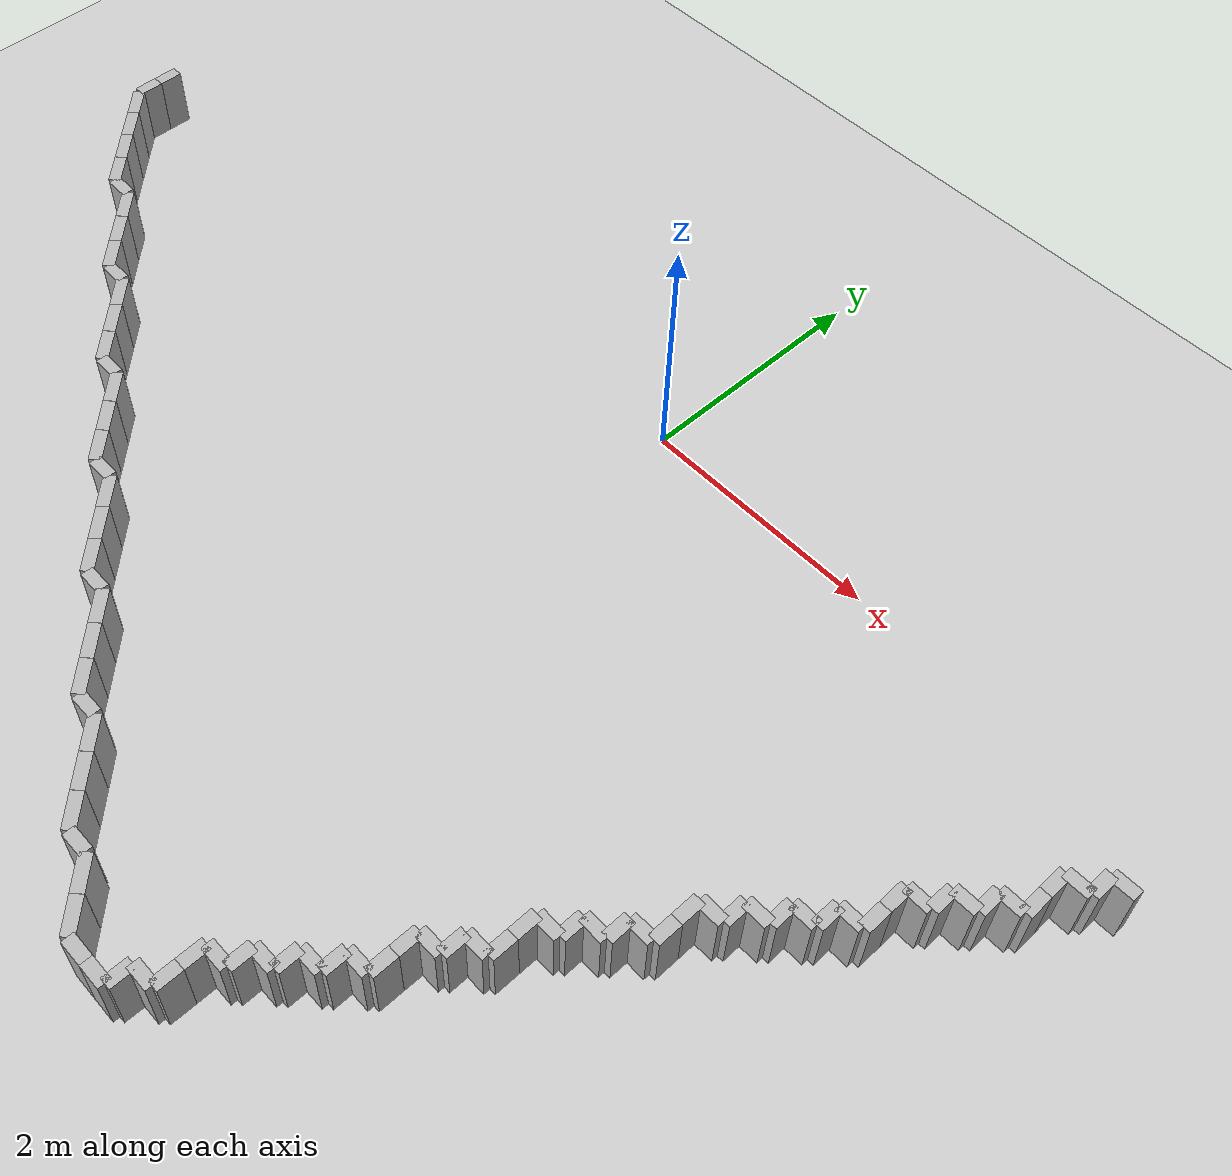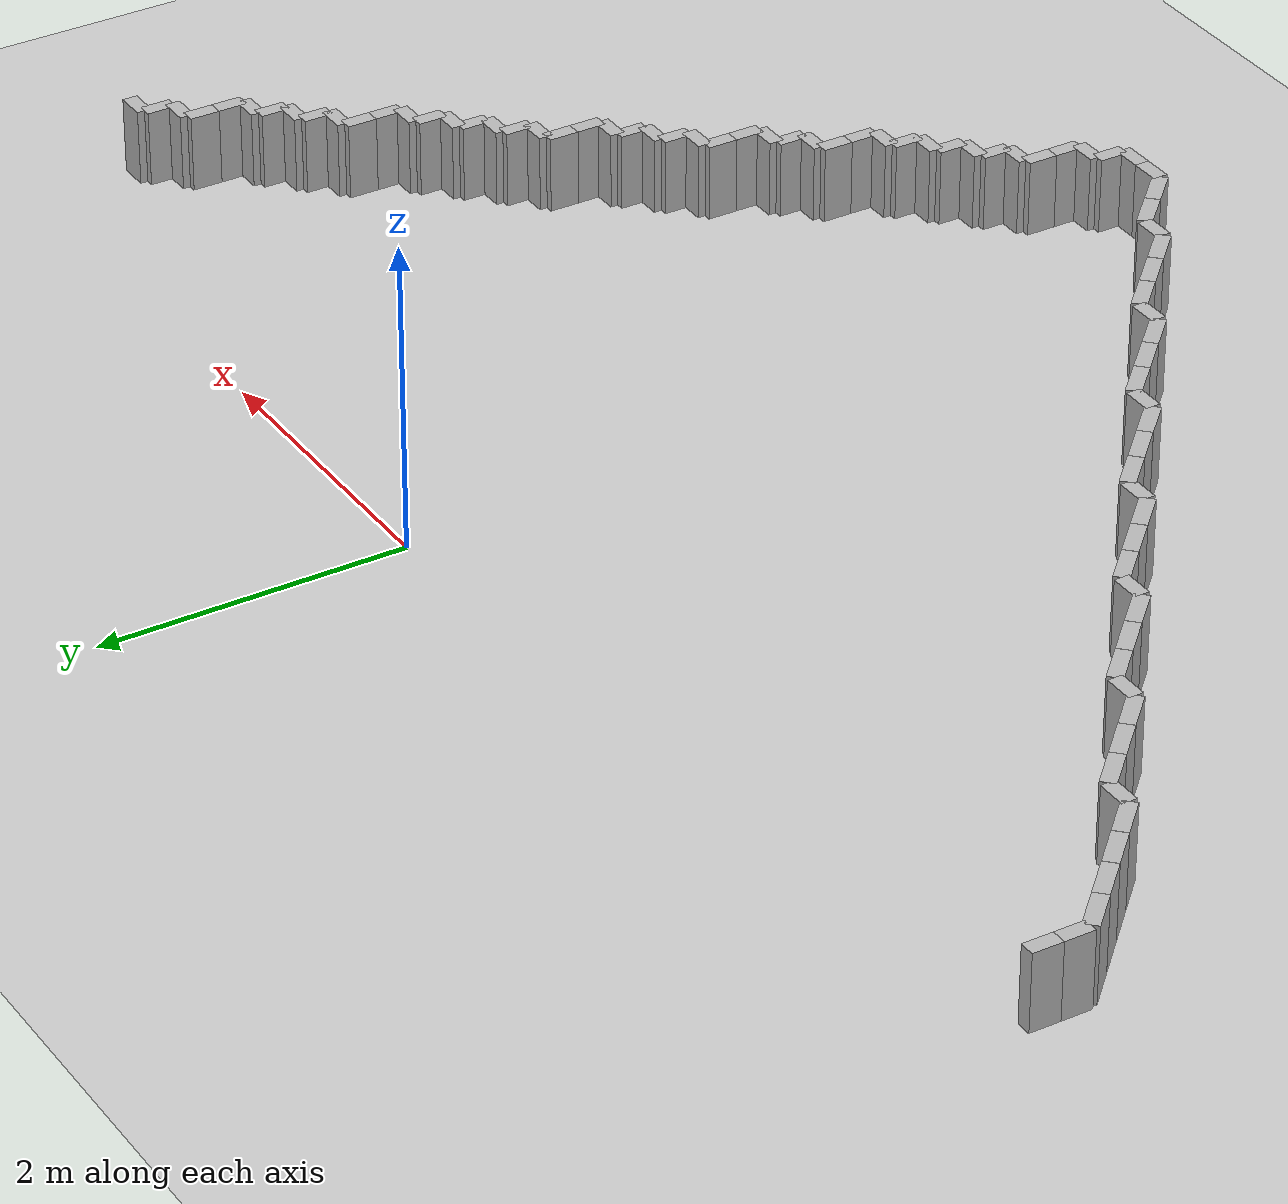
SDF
<sdf version="1.6">
 <world name="default">
  <include><uri>model://ground_plane</uri></include>
  <include><uri>model://sun</uri></include>
  <model name="wall_98">
   <static>true</static>
   <pose>-5.599803921568628 -0.6001960784313725 0 0 0 -1.5707963267948966</pose>
   <link name="link">
    <collision name="collision"><geometry><box><size>0.20000000000000007 0.1 1</size></box></geometry></collision>
    <visual name="visual"><geometry><box><size>0.20000000000000007 0.1 1</size></box></geometry></visual>
   </link>
  </model>
  <model name="wall_99">
   <static>true</static>
   <pose>-5.599803921568628 -0.8001960784313724 0 0 0 -1.5707963267948966</pose>
   <link name="link">
    <collision name="collision"><geometry><box><size>0.19999999999999996 0.1 1</size></box></geometry></collision>
    <visual name="visual"><geometry><box><size>0.19999999999999996 0.1 1</size></box></geometry></visual>
   </link>
  </model>
  <model name="wall_100">
   <static>true</static>
   <pose>-5.5 -1.0 0 0 0 -0.7853981633974481</pose>
   <link name="link">
    <collision name="collision"><geometry><box><size>0.2822881189207479 0.1 1</size></box></geometry></collision>
    <visual name="visual"><geometry><box><size>0.2822881189207479 0.1 1</size></box></geometry></visual>
   </link>
  </model>
  <model name="wall_101">
   <static>true</static>
   <pose>-5.4 -1.1 0 0 0 -0.7853981633974483</pose>
   <link name="link">
    <collision name="collision">
     <geometry><box><size>0.0005545935538712976 0.1 1</size></box></geometry>
    </collision>
    <visual name="visual"><geometry><box><size>0.0005545935538712976 0.1 1</size></box></geometry></visual>
   </link>
  </model>
  <model name="wall_102">
   <static>true</static>
   <pose>-5.300000000000001 -1.2000000000000002 0 0 0 -0.7853981633974477</pose>
   <link name="link">
    <collision name="collision"><geometry><box><size>0.28228811892074784 0.1 1</size></box></geometry></collision>
    <visual name="visual"><geometry><box><size>0.28228811892074784 0.1 1</size></box></geometry></visual>
   </link>
  </model>
  <model name="wall_103">
   <static>true</static>
   <pose>-5.2 -1.3 0 0 0 -0.7853981633974483</pose>
   <link name="link">
    <collision name="collision">
     <geometry><box><size>0.0005545935538712976 0.1 1</size></box></geometry>
    </collision>
    <visual name="visual"><geometry><box><size>0.0005545935538712976 0.1 1</size></box></geometry></visual>
   </link>
  </model>
  <model name="wall_104">
   <static>true</static>
   <pose>-5.1 -1.3999999999999997 0 0 0 -0.7853981633974461</pose>
   <link name="link">
    <collision name="collision"><geometry><box><size>0.28228811892074734 0.1 1</size></box></geometry></collision>
    <visual name="visual"><geometry><box><size>0.28228811892074734 0.1 1</size></box></geometry></visual>
   </link>
  </model>
  <model name="wall_105">
   <static>true</static>
   <pose>-5.0 -1.4999999999999996 0 0 0 -0.7853981633982976</pose>
   <link name="link">
    <collision name="collision">
     <geometry><box><size>0.0005545935538717686 0.1 1</size></box></geometry>
    </collision>
    <visual name="visual"><geometry><box><size>0.0005545935538717686 0.1 1</size></box></geometry></visual>
   </link>
  </model>
  <model name="wall_106">
   <static>true</static>
   <pose>-4.9 -1.5999999999999996 0 0 0 -0.7853981633974483</pose>
   <link name="link">
    <collision name="collision"><geometry><box><size>0.2822881189207467 0.1 1</size></box></geometry></collision>
    <visual name="visual"><geometry><box><size>0.2822881189207467 0.1 1</size></box></geometry></visual>
   </link>
  </model>
  <model name="wall_107">
   <static>true</static>
   <pose>-4.700196078431373 -1.699803921568627 0 0 0 0.0</pose>
   <link name="link">
    <collision name="collision"><geometry><box><size>0.20000000000000018 0.1 1</size></box></geometry></collision>
    <visual name="visual"><geometry><box><size>0.20000000000000018 0.1 1</size></box></geometry></visual>
   </link>
  </model>
  <model name="wall_108">
   <static>true</static>
   <pose>-4.6 -1.6999999999999997 0 0 0 -0.7853981633974483</pose>
   <link name="link">
    <collision name="collision">
     <geometry><box><size>0.0005545935538725537 0.1 1</size></box></geometry>
    </collision>
    <visual name="visual"><geometry><box><size>0.0005545935538725537 0.1 1</size></box></geometry></visual>
   </link>
  </model>
  <model name="wall_109">
   <static>true</static>
   <pose>-4.5 -1.7999999999999998 0 0 0 -0.7853981633974483</pose>
   <link name="link">
    <collision name="collision"><geometry><box><size>0.2822881189207467 0.1 1</size></box></geometry></collision>
    <visual name="visual"><geometry><box><size>0.2822881189207467 0.1 1</size></box></geometry></visual>
   </link>
  </model>
  <model name="wall_110">
   <static>true</static>
   <pose>-4.4 -1.9 0 0 0 -0.7853981633971652</pose>
   <link name="link">
    <collision name="collision">
     <geometry><box><size>0.0005545935538723967 0.1 1</size></box></geometry>
    </collision>
    <visual name="visual"><geometry><box><size>0.0005545935538723967 0.1 1</size></box></geometry></visual>
   </link>
  </model>
  <model name="wall_111">
   <static>true</static>
   <pose>-4.3 -1.9999999999999996 0 0 0 -0.7853981633974477</pose>
   <link name="link">
    <collision name="collision"><geometry><box><size>0.28228811892074657 0.1 1</size></box></geometry></collision>
    <visual name="visual"><geometry><box><size>0.28228811892074657 0.1 1</size></box></geometry></visual>
   </link>
  </model>
  <model name="wall_112">
   <static>true</static>
   <pose>-4.199999999999999 -2.0999999999999996 0 0 0 -0.7853981633974483</pose>
   <link name="link">
    <collision name="collision">
     <geometry><box><size>0.0005545935538725537 0.1 1</size></box></geometry>
    </collision>
    <visual name="visual"><geometry><box><size>0.0005545935538725537 0.1 1</size></box></geometry></visual>
   </link>
  </model>
  <model name="wall_113">
   <static>true</static>
   <pose>-4.1 -2.1999999999999997 0 0 0 -0.7853981633974483</pose>
   <link name="link">
    <collision name="collision"><geometry><box><size>0.2822881189207467 0.1 1</size></box></geometry></collision>
    <visual name="visual"><geometry><box><size>0.2822881189207467 0.1 1</size></box></geometry></visual>
   </link>
  </model>
  <model name="wall_114">
   <static>true</static>
   <pose>-3.9001960784313727 -2.299803921568627 0 0 0 0.0</pose>
   <link name="link">
    <collision name="collision"><geometry><box><size>0.19999999999999973 0.1 1</size></box></geometry></collision>
    <visual name="visual"><geometry><box><size>0.19999999999999973 0.1 1</size></box></geometry></visual>
   </link>
  </model>
  <model name="wall_115">
   <static>true</static>
   <pose>-3.8 -2.3 0 0 0 -0.7853981633974483</pose>
   <link name="link">
    <collision name="collision">
     <geometry><box><size>0.0005545935538725537 0.1 1</size></box></geometry>
    </collision>
    <visual name="visual"><geometry><box><size>0.0005545935538725537 0.1 1</size></box></geometry></visual>
   </link>
  </model>
  <model name="wall_116">
   <static>true</static>
   <pose>-3.6999999999999997 -2.4 0 0 0 -0.7853981633974483</pose>
   <link name="link">
    <collision name="collision"><geometry><box><size>0.2822881189207467 0.1 1</size></box></geometry></collision>
    <visual name="visual"><geometry><box><size>0.2822881189207467 0.1 1</size></box></geometry></visual>
   </link>
  </model>
  <model name="wall_117">
   <static>true</static>
   <pose>-3.5999999999999996 -2.5 0 0 0 -0.7853981633974483</pose>
   <link name="link">
    <collision name="collision">
     <geometry><box><size>0.0005545935538719256 0.1 1</size></box></geometry>
    </collision>
    <visual name="visual"><geometry><box><size>0.0005545935538719256 0.1 1</size></box></geometry></visual>
   </link>
  </model>
  <model name="wall_118">
   <static>true</static>
   <pose>-3.5 -2.5999999999999996 0 0 0 -0.7853981633974483</pose>
   <link name="link">
    <collision name="collision"><geometry><box><size>0.2822881189207467 0.1 1</size></box></geometry></collision>
    <visual name="visual"><geometry><box><size>0.2822881189207467 0.1 1</size></box></geometry></visual>
   </link>
  </model>
  <model name="wall_119">
   <static>true</static>
   <pose>-3.4 -2.6999999999999997 0 0 0 -0.7853981633974483</pose>
   <link name="link">
    <collision name="collision">
     <geometry><box><size>0.0005545935538725537 0.1 1</size></box></geometry>
    </collision>
    <visual name="visual"><geometry><box><size>0.0005545935538725537 0.1 1</size></box></geometry></visual>
   </link>
  </model>
  <model name="wall_120">
   <static>true</static>
   <pose>-3.3 -2.8 0 0 0 -0.7853981633974483</pose>
   <link name="link">
    <collision name="collision"><geometry><box><size>0.2822881189207467 0.1 1</size></box></geometry></collision>
    <visual name="visual"><geometry><box><size>0.2822881189207467 0.1 1</size></box></geometry></visual>
   </link>
  </model>
  <model name="wall_121">
   <static>true</static>
   <pose>-3.1001960784313725 -2.899803921568627 0 0 0 0.0</pose>
   <link name="link">
    <collision name="collision"><geometry><box><size>0.20000000000000018 0.1 1</size></box></geometry></collision>
    <visual name="visual"><geometry><box><size>0.20000000000000018 0.1 1</size></box></geometry></visual>
   </link>
  </model>
  <model name="wall_122">
   <static>true</static>
   <pose>-3.0 -2.9 0 0 0 -0.7853981633980145</pose>
   <link name="link">
    <collision name="collision">
     <geometry><box><size>0.0005545935538722397 0.1 1</size></box></geometry>
    </collision>
    <visual name="visual"><geometry><box><size>0.0005545935538722397 0.1 1</size></box></geometry></visual>
   </link>
  </model>
  <model name="wall_123">
   <static>true</static>
   <pose>-2.9 -3.0 0 0 0 -0.7853981633974483</pose>
   <link name="link">
    <collision name="collision"><geometry><box><size>0.2822881189207467 0.1 1</size></box></geometry></collision>
    <visual name="visual"><geometry><box><size>0.2822881189207467 0.1 1</size></box></geometry></visual>
   </link>
  </model>
  <model name="wall_124">
   <static>true</static>
   <pose>-2.8 -3.0999999999999996 0 0 0 -0.7853981633968821</pose>
   <link name="link">
    <collision name="collision">
     <geometry><box><size>0.0005545935538722397 0.1 1</size></box></geometry>
    </collision>
    <visual name="visual"><geometry><box><size>0.0005545935538722397 0.1 1</size></box></geometry></visual>
   </link>
  </model>
  <model name="wall_125">
   <static>true</static>
   <pose>-2.6999999999999997 -3.1999999999999997 0 0 0 -0.7853981633974483</pose>
   <link name="link">
    <collision name="collision"><geometry><box><size>0.2822881189207467 0.1 1</size></box></geometry></collision>
    <visual name="visual"><geometry><box><size>0.2822881189207467 0.1 1</size></box></geometry></visual>
   </link>
  </model>
  <model name="wall_126">
   <static>true</static>
   <pose>-2.5999999999999996 -3.3 0 0 0 -0.7853981633980145</pose>
   <link name="link">
    <collision name="collision">
     <geometry><box><size>0.0005545935538722397 0.1 1</size></box></geometry>
    </collision>
    <visual name="visual"><geometry><box><size>0.0005545935538722397 0.1 1</size></box></geometry></visual>
   </link>
  </model>
  <model name="wall_127">
   <static>true</static>
   <pose>-2.5 -3.4 0 0 0 -0.7853981633974483</pose>
   <link name="link">
    <collision name="collision"><geometry><box><size>0.2822881189207467 0.1 1</size></box></geometry></collision>
    <visual name="visual"><geometry><box><size>0.2822881189207467 0.1 1</size></box></geometry></visual>
   </link>
  </model>
  <model name="wall_128">
   <static>true</static>
   <pose>-2.3001960784313726 -3.499803921568627 0 0 0 0.0</pose>
   <link name="link">
    <collision name="collision"><geometry><box><size>0.20000000000000018 0.1 1</size></box></geometry></collision>
    <visual name="visual"><geometry><box><size>0.20000000000000018 0.1 1</size></box></geometry></visual>
   </link>
  </model>
  <model name="wall_129">
   <static>true</static>
   <pose>-2.1999999999999997 -3.5 0 0 0 -0.7853981633968821</pose>
   <link name="link">
    <collision name="collision">
     <geometry><box><size>0.0005545935538722397 0.1 1</size></box></geometry>
    </collision>
    <visual name="visual"><geometry><box><size>0.0005545935538722397 0.1 1</size></box></geometry></visual>
   </link>
  </model>
  <model name="wall_130">
   <static>true</static>
   <pose>-2.0999999999999996 -3.5999999999999996 0 0 0 -0.7853981633974483</pose>
   <link name="link">
    <collision name="collision"><geometry><box><size>0.2822881189207467 0.1 1</size></box></geometry></collision>
    <visual name="visual"><geometry><box><size>0.2822881189207467 0.1 1</size></box></geometry></visual>
   </link>
  </model>
  <model name="wall_131">
   <static>true</static>
   <pose>-1.9999999999999996 -3.6999999999999997 0 0 0 -0.7853981633977314</pose>
   <link name="link">
    <collision name="collision">
     <geometry><box><size>0.0005545935538723967 0.1 1</size></box></geometry>
    </collision>
    <visual name="visual"><geometry><box><size>0.0005545935538723967 0.1 1</size></box></geometry></visual>
   </link>
  </model>
  <model name="wall_132">
   <static>true</static>
   <pose>-1.8999999999999997 -3.8 0 0 0 -0.7853981633974483</pose>
   <link name="link">
    <collision name="collision"><geometry><box><size>0.2822881189207467 0.1 1</size></box></geometry></collision>
    <visual name="visual"><geometry><box><size>0.2822881189207467 0.1 1</size></box></geometry></visual>
   </link>
  </model>
  <model name="wall_133">
   <static>true</static>
   <pose>-1.7999999999999998 -3.9 0 0 0 -0.7853981633977314</pose>
   <link name="link">
    <collision name="collision">
     <geometry><box><size>0.0005545935538723967 0.1 1</size></box></geometry>
    </collision>
    <visual name="visual"><geometry><box><size>0.0005545935538723967 0.1 1</size></box></geometry></visual>
   </link>
  </model>
  <model name="wall_134">
   <static>true</static>
   <pose>-1.6999999999999997 -4.0 0 0 0 -0.7853981633974483</pose>
   <link name="link">
    <collision name="collision"><geometry><box><size>0.2822881189207467 0.1 1</size></box></geometry></collision>
    <visual name="visual"><geometry><box><size>0.2822881189207467 0.1 1</size></box></geometry></visual>
   </link>
  </model>
  <model name="wall_135">
   <static>true</static>
   <pose>-1.5001960784313724 -4.099803921568627 0 0 0 0.0</pose>
   <link name="link">
    <collision name="collision"><geometry><box><size>0.19999999999999996 0.1 1</size></box></geometry></collision>
    <visual name="visual"><geometry><box><size>0.19999999999999996 0.1 1</size></box></geometry></visual>
   </link>
  </model>
  <model name="wall_136">
   <static>true</static>
   <pose>-1.4000000000000001 -4.1 0 0 0 -0.7853981633985807</pose>
   <link name="link">
    <collision name="collision">
     <geometry><box><size>0.0005545935538719256 0.1 1</size></box></geometry>
    </collision>
    <visual name="visual"><geometry><box><size>0.0005545935538719256 0.1 1</size></box></geometry></visual>
   </link>
  </model>
  <model name="wall_137">
   <static>true</static>
   <pose>-1.3000000000000003 -4.2 0 0 0 -0.7853981633974466</pose>
   <link name="link">
    <collision name="collision"><geometry><box><size>0.2822881189207472 0.1 1</size></box></geometry></collision>
    <visual name="visual"><geometry><box><size>0.2822881189207472 0.1 1</size></box></geometry></visual>
   </link>
  </model>
  <model name="wall_138">
   <static>true</static>
   <pose>-1.2000000000000002 -4.3 0 0 0 -0.7853981633971652</pose>
   <link name="link">
    <collision name="collision">
     <geometry><box><size>0.0005545935538714546 0.1 1</size></box></geometry>
    </collision>
    <visual name="visual"><geometry><box><size>0.0005545935538714546 0.1 1</size></box></geometry></visual>
   </link>
  </model>
  <model name="wall_139">
   <static>true</static>
   <pose>-1.1 -4.3999999999999995 0 0 0 -0.7853981633974466</pose>
   <link name="link">
    <collision name="collision"><geometry><box><size>0.2822881189207472 0.1 1</size></box></geometry></collision>
    <visual name="visual"><geometry><box><size>0.2822881189207472 0.1 1</size></box></geometry></visual>
   </link>
  </model>
  <model name="wall_140">
   <static>true</static>
   <pose>-1.0 -4.5 0 0 0 -0.7853981633985807</pose>
   <link name="link">
    <collision name="collision">
     <geometry><box><size>0.0005545935538719256 0.1 1</size></box></geometry>
    </collision>
    <visual name="visual"><geometry><box><size>0.0005545935538719256 0.1 1</size></box></geometry></visual>
   </link>
  </model>
  <model name="wall_141">
   <static>true</static>
   <pose>-0.9 -4.6 0 0 0 -0.7853981633974488</pose>
   <link name="link">
    <collision name="collision"><geometry><box><size>0.28228811892074784 0.1 1</size></box></geometry></collision>
    <visual name="visual"><geometry><box><size>0.28228811892074784 0.1 1</size></box></geometry></visual>
   </link>
  </model>
  <model name="wall_142">
   <static>true</static>
   <pose>-0.7001960784313724 -4.699803921568628 0 0 0 0.0</pose>
   <link name="link">
    <collision name="collision"><geometry><box><size>0.19999999999999996 0.1 1</size></box></geometry></collision>
    <visual name="visual"><geometry><box><size>0.19999999999999996 0.1 1</size></box></geometry></visual>
   </link>
  </model>
  <model name="wall_143">
   <static>true</static>
   <pose>-0.6000000000000001 -4.7 0 0 0 -0.7853981633973067</pose>
   <link name="link">
    <collision name="collision">
     <geometry><box><size>0.0005545935538713761 0.1 1</size></box></geometry>
    </collision>
    <visual name="visual"><geometry><box><size>0.0005545935538713761 0.1 1</size></box></geometry></visual>
   </link>
  </model>
  <model name="wall_144">
   <static>true</static>
   <pose>-0.5 -4.800000000000001 0 0 0 -0.7853981633974488</pose>
   <link name="link">
    <collision name="collision"><geometry><box><size>0.28228811892074784 0.1 1</size></box></geometry></collision>
    <visual name="visual"><geometry><box><size>0.28228811892074784 0.1 1</size></box></geometry></visual>
   </link>
  </model>
  <model name="wall_145">
   <static>true</static>
   <pose>-0.4 -4.9 0 0 0 -0.7853981633974483</pose>
   <link name="link">
    <collision name="collision">
     <geometry><box><size>0.0005545935538712976 0.1 1</size></box></geometry>
    </collision>
    <visual name="visual"><geometry><box><size>0.0005545935538712976 0.1 1</size></box></geometry></visual>
   </link>
  </model>
  <model name="wall_146">
   <static>true</static>
   <pose>-0.30000000000000004 -5.0 0 0 0 -0.7853981633974487</pose>
   <link name="link">
    <collision name="collision"><geometry><box><size>0.28228811892074784 0.1 1</size></box></geometry></collision>
    <visual name="visual"><geometry><box><size>0.28228811892074784 0.1 1</size></box></geometry></visual>
   </link>
  </model>
  <model name="wall_147">
   <static>true</static>
   <pose>-0.2 -5.1000000000000005 0 0 0 -0.7853981633974483</pose>
   <link name="link">
    <collision name="collision">
     <geometry><box><size>0.0005545935538712976 0.1 1</size></box></geometry>
    </collision>
    <visual name="visual"><geometry><box><size>0.0005545935538712976 0.1 1</size></box></geometry></visual>
   </link>
  </model>
  <model name="wall_148">
   <static>true</static>
   <pose>-0.1 -5.200000000000001 0 0 0 -0.7853981633974487</pose>
   <link name="link">
    <collision name="collision"><geometry><box><size>0.28228811892074784 0.1 1</size></box></geometry></collision>
    <visual name="visual"><geometry><box><size>0.28228811892074784 0.1 1</size></box></geometry></visual>
   </link>
  </model>
  <model name="wall_149">
   <static>true</static>
   <pose>0.09980392156862763 -5.299803921568628 0 0 0 0.0</pose>
   <link name="link">
    <collision name="collision"><geometry><box><size>0.2 0.1 1</size></box></geometry></collision>
    <visual name="visual"><geometry><box><size>0.2 0.1 1</size></box></geometry></visual>
   </link>
  </model>
  <model name="wall_150">
   <static>true</static>
   <pose>0.2 -5.300000000000001 0 0 0 -0.7853981633974483</pose>
   <link name="link">
    <collision name="collision">
     <geometry><box><size>0.0005545935538712976 0.1 1</size></box></geometry>
    </collision>
    <visual name="visual"><geometry><box><size>0.0005545935538712976 0.1 1</size></box></geometry></visual>
   </link>
  </model>
  <model name="wall_151">
   <static>true</static>
   <pose>0.30000000000000004 -5.4 0 0 0 -0.7853981633974465</pose>
   <link name="link">
    <collision name="collision"><geometry><box><size>0.28228811892074723 0.1 1</size></box></geometry></collision>
    <visual name="visual"><geometry><box><size>0.28228811892074723 0.1 1</size></box></geometry></visual>
   </link>
  </model>
  <model name="wall_152">
   <static>true</static>
   <pose>0.4 -5.5 0 0 0 -0.7853981633974483</pose>
   <link name="link">
    <collision name="collision">
     <geometry><box><size>0.0005545935538712976 0.1 1</size></box></geometry>
    </collision>
    <visual name="visual"><geometry><box><size>0.0005545935538712976 0.1 1</size></box></geometry></visual>
   </link>
  </model>
  <model name="wall_153">
   <static>true</static>
   <pose>0.5 -5.6 0 0 0 -0.7853981633974488</pose>
   <link name="link">
    <collision name="collision"><geometry><box><size>0.28228811892074784 0.1 1</size></box></geometry></collision>
    <visual name="visual"><geometry><box><size>0.28228811892074784 0.1 1</size></box></geometry></visual>
   </link>
  </model>
  <model name="wall_154">
   <static>true</static>
   <pose>0.6998039215686276 -5.699803921568628 0 0 0 0.0</pose>
   <link name="link">
    <collision name="collision"><geometry><box><size>0.20000000000000007 0.1 1</size></box></geometry></collision>
    <visual name="visual"><geometry><box><size>0.20000000000000007 0.1 1</size></box></geometry></visual>
   </link>
  </model>
  <model name="wall_155">
   <static>true</static>
   <pose>0.8998039215686277 -5.699803921568628 0 0 0 0.0</pose>
   <link name="link">
    <collision name="collision"><geometry><box><size>0.19999999999999996 0.1 1</size></box></geometry></collision>
    <visual name="visual"><geometry><box><size>0.19999999999999996 0.1 1</size></box></geometry></visual>
   </link>
  </model>
  <model name="wall_156">
   <static>true</static>
   <pose>0.9998039215686276 -5.6 0 0 0 1.5707963267948966</pose>
   <link name="link">
    <collision name="collision"><geometry><box><size>0.19960784313725544 0.1 1</size></box></geometry></collision>
    <visual name="visual"><geometry><box><size>0.19960784313725544 0.1 1</size></box></geometry></visual>
   </link>
  </model>
  <model name="wall_157">
   <static>true</static>
   <pose>1.0998039215686277 -5.5 0 0 0 0.001960781800869945</pose>
   <link name="link">
    <collision name="collision"><geometry><box><size>0.2000003844671429 0.1 1</size></box></geometry></collision>
    <visual name="visual"><geometry><box><size>0.2000003844671429 0.1 1</size></box></geometry></visual>
   </link>
  </model>
  <model name="wall_158">
   <static>true</static>
   <pose>1.1998039215686276 -5.4 0 0 0 1.5707963267948966</pose>
   <link name="link">
    <collision name="collision"><geometry><box><size>0.19960784313725455 0.1 1</size></box></geometry></collision>
    <visual name="visual"><geometry><box><size>0.19960784313725455 0.1 1</size></box></geometry></visual>
   </link>
  </model>
  <model name="wall_159">
   <static>true</static>
   <pose>1.1998039215686276 -5.200196078431373 0 0 0 1.5707963267948966</pose>
   <link name="link">
    <collision name="collision"><geometry><box><size>0.20000000000000018 0.1 1</size></box></geometry></collision>
    <visual name="visual"><geometry><box><size>0.20000000000000018 0.1 1</size></box></geometry></visual>
   </link>
  </model>
  <model name="wall_160">
   <static>true</static>
   <pose>1.2998039215686277 -5.1000000000000005 0 0 0 0.001960781800869943</pose>
   <link name="link">
    <collision name="collision"><geometry><box><size>0.20000038446714313 0.1 1</size></box></geometry></collision>
    <visual name="visual"><geometry><box><size>0.20000038446714313 0.1 1</size></box></geometry></visual>
   </link>
  </model>
  <model name="wall_161">
   <static>true</static>
   <pose>1.3998039215686278 -5.0 0 0 0 1.5707963267948966</pose>
   <link name="link">
    <collision name="collision"><geometry><box><size>0.19960784313725544 0.1 1</size></box></geometry></collision>
    <visual name="visual"><geometry><box><size>0.19960784313725544 0.1 1</size></box></geometry></visual>
   </link>
  </model>
  <model name="wall_162">
   <static>true</static>
   <pose>1.4998039215686276 -4.9 0 0 0 0.001960781800869945</pose>
   <link name="link">
    <collision name="collision"><geometry><box><size>0.2000003844671429 0.1 1</size></box></geometry></collision>
    <visual name="visual"><geometry><box><size>0.2000003844671429 0.1 1</size></box></geometry></visual>
   </link>
  </model>
  <model name="wall_163">
   <static>true</static>
   <pose>1.5998039215686277 -4.800000000000001 0 0 0 1.5707963267948966</pose>
   <link name="link">
    <collision name="collision"><geometry><box><size>0.19960784313725544 0.1 1</size></box></geometry></collision>
    <visual name="visual"><geometry><box><size>0.19960784313725544 0.1 1</size></box></geometry></visual>
   </link>
  </model>
  <model name="wall_164">
   <static>true</static>
   <pose>1.6998039215686278 -4.7 0 0 0 0.001960781800869945</pose>
   <link name="link">
    <collision name="collision"><geometry><box><size>0.2000003844671429 0.1 1</size></box></geometry></collision>
    <visual name="visual"><geometry><box><size>0.2000003844671429 0.1 1</size></box></geometry></visual>
   </link>
  </model>
  <model name="wall_165">
   <static>true</static>
   <pose>1.7998039215686277 -4.6 0 0 0 1.5707963267948966</pose>
   <link name="link">
    <collision name="collision"><geometry><box><size>0.19960784313725544 0.1 1</size></box></geometry></collision>
    <visual name="visual"><geometry><box><size>0.19960784313725544 0.1 1</size></box></geometry></visual>
   </link>
  </model>
  <model name="wall_166">
   <static>true</static>
   <pose>1.8998039215686275 -4.5 0 0 0 0.001960781800874386</pose>
   <link name="link">
    <collision name="collision"><geometry><box><size>0.2000003844671429 0.1 1</size></box></geometry></collision>
    <visual name="visual"><geometry><box><size>0.2000003844671429 0.1 1</size></box></geometry></visual>
   </link>
  </model>
  <model name="wall_167">
   <static>true</static>
   <pose>1.9998039215686276 -4.3999999999999995 0 0 0 1.5707963267948966</pose>
   <link name="link">
    <collision name="collision"><geometry><box><size>0.19960784313725455 0.1 1</size></box></geometry></collision>
    <visual name="visual"><geometry><box><size>0.19960784313725455 0.1 1</size></box></geometry></visual>
   </link>
  </model>
  <model name="wall_168">
   <static>true</static>
   <pose>1.9998039215686276 -4.2001960784313725 0 0 0 1.5707963267948966</pose>
   <link name="link">
    <collision name="collision"><geometry><box><size>0.1999999999999993 0.1 1</size></box></geometry></collision>
    <visual name="visual"><geometry><box><size>0.1999999999999993 0.1 1</size></box></geometry></visual>
   </link>
  </model>
  <model name="wall_169">
   <static>true</static>
   <pose>2.0998039215686277 -4.1 0 0 0 0.0019607818008743837</pose>
   <link name="link">
    <collision name="collision"><geometry><box><size>0.20000038446714313 0.1 1</size></box></geometry></collision>
    <visual name="visual"><geometry><box><size>0.20000038446714313 0.1 1</size></box></geometry></visual>
   </link>
  </model>
  <model name="wall_170">
   <static>true</static>
   <pose>2.199803921568628 -4.0 0 0 0 1.5707963267948966</pose>
   <link name="link">
    <collision name="collision"><geometry><box><size>0.19960784313725455 0.1 1</size></box></geometry></collision>
    <visual name="visual"><geometry><box><size>0.19960784313725455 0.1 1</size></box></geometry></visual>
   </link>
  </model>
  <model name="wall_171">
   <static>true</static>
   <pose>2.2998039215686275 -3.9 0 0 0 0.001960781800874388</pose>
   <link name="link">
    <collision name="collision"><geometry><box><size>0.2000003844671427 0.1 1</size></box></geometry></collision>
    <visual name="visual"><geometry><box><size>0.2000003844671427 0.1 1</size></box></geometry></visual>
   </link>
  </model>
  <model name="wall_172">
   <static>true</static>
   <pose>2.3998039215686275 -3.8 0 0 0 1.5707963267948966</pose>
   <link name="link">
    <collision name="collision"><geometry><box><size>0.19960784313725455 0.1 1</size></box></geometry></collision>
    <visual name="visual"><geometry><box><size>0.19960784313725455 0.1 1</size></box></geometry></visual>
   </link>
  </model>
  <model name="wall_173">
   <static>true</static>
   <pose>2.3998039215686275 -3.6001960784313725 0 0 0 1.5707963267948966</pose>
   <link name="link">
    <collision name="collision"><geometry><box><size>0.20000000000000018 0.1 1</size></box></geometry></collision>
    <visual name="visual"><geometry><box><size>0.20000000000000018 0.1 1</size></box></geometry></visual>
   </link>
  </model>
  <model name="wall_174">
   <static>true</static>
   <pose>2.4998039215686276 -3.5 0 0 0 0.0019607818008721633</pose>
   <link name="link">
    <collision name="collision"><geometry><box><size>0.20000038446714313 0.1 1</size></box></geometry></collision>
    <visual name="visual"><geometry><box><size>0.20000038446714313 0.1 1</size></box></geometry></visual>
   </link>
  </model>
  <model name="wall_175">
   <static>true</static>
   <pose>2.5998039215686277 -3.4 0 0 0 1.5707963267948966</pose>
   <link name="link">
    <collision name="collision"><geometry><box><size>0.19960784313725455 0.1 1</size></box></geometry></collision>
    <visual name="visual"><geometry><box><size>0.19960784313725455 0.1 1</size></box></geometry></visual>
   </link>
  </model>
  <model name="wall_176">
   <static>true</static>
   <pose>2.699803921568628 -3.3 0 0 0 0.0019607818008743837</pose>
   <link name="link">
    <collision name="collision"><geometry><box><size>0.20000038446714313 0.1 1</size></box></geometry></collision>
    <visual name="visual"><geometry><box><size>0.20000038446714313 0.1 1</size></box></geometry></visual>
   </link>
  </model>
  <model name="wall_177">
   <static>true</static>
   <pose>2.799803921568628 -3.1999999999999997 0 0 0 1.5707963267948966</pose>
   <link name="link">
    <collision name="collision"><geometry><box><size>0.19960784313725455 0.1 1</size></box></geometry></collision>
    <visual name="visual"><geometry><box><size>0.19960784313725455 0.1 1</size></box></geometry></visual>
   </link>
  </model>
  <model name="wall_178">
   <static>true</static>
   <pose>2.899803921568628 -3.0999999999999996 0 0 0 0.0019607818008721676</pose>
   <link name="link">
    <collision name="collision"><geometry><box><size>0.2000003844671427 0.1 1</size></box></geometry></collision>
    <visual name="visual"><geometry><box><size>0.2000003844671427 0.1 1</size></box></geometry></visual>
   </link>
  </model>
  <model name="wall_179">
   <static>true</static>
   <pose>2.9998039215686276 -3.0 0 0 0 1.5707963267948966</pose>
   <link name="link">
    <collision name="collision"><geometry><box><size>0.19960784313725455 0.1 1</size></box></geometry></collision>
    <visual name="visual"><geometry><box><size>0.19960784313725455 0.1 1</size></box></geometry></visual>
   </link>
  </model>
  <model name="wall_180">
   <static>true</static>
   <pose>2.9998039215686276 -2.8001960784313726 0 0 0 1.5707963267948966</pose>
   <link name="link">
    <collision name="collision"><geometry><box><size>0.20000000000000018 0.1 1</size></box></geometry></collision>
    <visual name="visual"><geometry><box><size>0.20000000000000018 0.1 1</size></box></geometry></visual>
   </link>
  </model>
  <model name="wall_181">
   <static>true</static>
   <pose>3.0998039215686277 -2.6999999999999997 0 0 0 0.0019607818008743837</pose>
   <link name="link">
    <collision name="collision"><geometry><box><size>0.20000038446714313 0.1 1</size></box></geometry></collision>
    <visual name="visual"><geometry><box><size>0.20000038446714313 0.1 1</size></box></geometry></visual>
   </link>
  </model>
  <model name="wall_182">
   <static>true</static>
   <pose>3.199803921568628 -2.5999999999999996 0 0 0 1.5707963267948966</pose>
   <link name="link">
    <collision name="collision"><geometry><box><size>0.19960784313725455 0.1 1</size></box></geometry></collision>
    <visual name="visual"><geometry><box><size>0.19960784313725455 0.1 1</size></box></geometry></visual>
   </link>
  </model>
  <model name="wall_183">
   <static>true</static>
   <pose>3.299803921568628 -2.5 0 0 0 0.0019607818008721633</pose>
   <link name="link">
    <collision name="collision"><geometry><box><size>0.20000038446714313 0.1 1</size></box></geometry></collision>
    <visual name="visual"><geometry><box><size>0.20000038446714313 0.1 1</size></box></geometry></visual>
   </link>
  </model>
  <model name="wall_184">
   <static>true</static>
   <pose>3.399803921568628 -2.4 0 0 0 1.5707963267948966</pose>
   <link name="link">
    <collision name="collision"><geometry><box><size>0.19960784313725455 0.1 1</size></box></geometry></collision>
    <visual name="visual"><geometry><box><size>0.19960784313725455 0.1 1</size></box></geometry></visual>
   </link>
  </model>
  <model name="wall_185">
   <static>true</static>
   <pose>3.4998039215686276 -2.3 0 0 0 0.001960781800874388</pose>
   <link name="link">
    <collision name="collision"><geometry><box><size>0.2000003844671427 0.1 1</size></box></geometry></collision>
    <visual name="visual"><geometry><box><size>0.2000003844671427 0.1 1</size></box></geometry></visual>
   </link>
  </model>
  <model name="wall_186">
   <static>true</static>
   <pose>3.5998039215686277 -2.1999999999999997 0 0 0 1.5707963267948966</pose>
   <link name="link">
    <collision name="collision"><geometry><box><size>0.19960784313725455 0.1 1</size></box></geometry></collision>
    <visual name="visual"><geometry><box><size>0.19960784313725455 0.1 1</size></box></geometry></visual>
   </link>
  </model>
  <model name="wall_187">
   <static>true</static>
   <pose>3.699803921568628 -2.0999999999999996 0 0 0 0.0019607818008743837</pose>
   <link name="link">
    <collision name="collision"><geometry><box><size>0.20000038446714313 0.1 1</size></box></geometry></collision>
    <visual name="visual"><geometry><box><size>0.20000038446714313 0.1 1</size></box></geometry></visual>
   </link>
  </model>
  <model name="wall_188">
   <static>true</static>
   <pose>3.799803921568628 -1.9999999999999996 0 0 0 1.5707963267948966</pose>
   <link name="link">
    <collision name="collision"><geometry><box><size>0.19960784313725433 0.1 1</size></box></geometry></collision>
    <visual name="visual"><geometry><box><size>0.19960784313725433 0.1 1</size></box></geometry></visual>
   </link>
  </model>
  <model name="wall_189">
   <static>true</static>
   <pose>3.799803921568628 -1.8001960784313726 0 0 0 1.5707963267948966</pose>
   <link name="link">
    <collision name="collision"><geometry><box><size>0.19999999999999996 0.1 1</size></box></geometry></collision>
    <visual name="visual"><geometry><box><size>0.19999999999999996 0.1 1</size></box></geometry></visual>
   </link>
  </model>
  <model name="wall_190">
   <static>true</static>
   <pose>3.899803921568628 -1.6999999999999997 0 0 0 0.001960781800874388</pose>
   <link name="link">
    <collision name="collision"><geometry><box><size>0.2000003844671427 0.1 1</size></box></geometry></collision>
    <visual name="visual"><geometry><box><size>0.2000003844671427 0.1 1</size></box></geometry></visual>
   </link>
  </model>
  <model name="wall_191">
   <static>true</static>
   <pose>3.9998039215686276 -1.5999999999999996 0 0 0 1.5707963267948966</pose>
   <link name="link">
    <collision name="collision"><geometry><box><size>0.19960784313725455 0.1 1</size></box></geometry></collision>
    <visual name="visual"><geometry><box><size>0.19960784313725455 0.1 1</size></box></geometry></visual>
   </link>
  </model>
  <model name="wall_192">
   <static>true</static>
   <pose>4.099803921568627 -1.4999999999999996 0 0 0 0.0019607818008732735</pose>
   <link name="link">
    <collision name="collision"><geometry><box><size>0.20000038446714313 0.1 1</size></box></geometry></collision>
    <visual name="visual"><geometry><box><size>0.20000038446714313 0.1 1</size></box></geometry></visual>
   </link>
  </model>
  <model name="wall_193">
   <static>true</static>
   <pose>4.199803921568628 -1.3999999999999997 0 0 0 1.5707963267948966</pose>
   <link name="link">
    <collision name="collision"><geometry><box><size>0.19960784313725455 0.1 1</size></box></geometry></collision>
    <visual name="visual"><geometry><box><size>0.19960784313725455 0.1 1</size></box></geometry></visual>
   </link>
  </model>
  <model name="wall_194">
   <static>true</static>
   <pose>4.299803921568628 -1.3 0 0 0 0.001960781800869943</pose>
   <link name="link">
    <collision name="collision"><geometry><box><size>0.20000038446714313 0.1 1</size></box></geometry></collision>
    <visual name="visual"><geometry><box><size>0.20000038446714313 0.1 1</size></box></geometry></visual>
   </link>
  </model>
  <model name="wall_195">
   <static>true</static>
   <pose>4.399803921568628 -1.2000000000000002 0 0 0 1.5707963267948966</pose>
   <link name="link">
    <collision name="collision"><geometry><box><size>0.19960784313725521 0.1 1</size></box></geometry></collision>
    <visual name="visual"><geometry><box><size>0.19960784313725521 0.1 1</size></box></geometry></visual>
   </link>
  </model>
  <model name="wall_196">
   <static>true</static>
   <pose>4.399803921568628 -1.0001960784313724 0 0 0 1.5707963267948966</pose>
   <link name="link">
    <collision name="collision"><geometry><box><size>0.20000000000000007 0.1 1</size></box></geometry></collision>
    <visual name="visual"><geometry><box><size>0.20000000000000007 0.1 1</size></box></geometry></visual>
   </link>
  </model>
  <model name="wall_197">
   <static>true</static>
   <pose>4.499803921568628 -0.9 0 0 0 0.001960781800869943</pose>
   <link name="link">
    <collision name="collision"><geometry><box><size>0.20000038446714313 0.1 1</size></box></geometry></collision>
    <visual name="visual"><geometry><box><size>0.20000038446714313 0.1 1</size></box></geometry></visual>
   </link>
  </model>
  <model name="wall_198">
   <static>true</static>
   <pose>4.599803921568628 -0.8 0 0 0 1.5707963267948966</pose>
   <link name="link">
    <collision name="collision"><geometry><box><size>0.19960784313725521 0.1 1</size></box></geometry></collision>
    <visual name="visual"><geometry><box><size>0.19960784313725521 0.1 1</size></box></geometry></visual>
   </link>
  </model>
  <model name="wall_199">
   <static>true</static>
   <pose>4.699803921568628 -0.7000000000000001 0 0 0 0.0019607818008699515</pose>
   <link name="link">
    <collision name="collision"><geometry><box><size>0.20000038446714224 0.1 1</size></box></geometry></collision>
    <visual name="visual"><geometry><box><size>0.20000038446714224 0.1 1</size></box></geometry></visual>
   </link>
  </model>
 </world>
</sdf>
